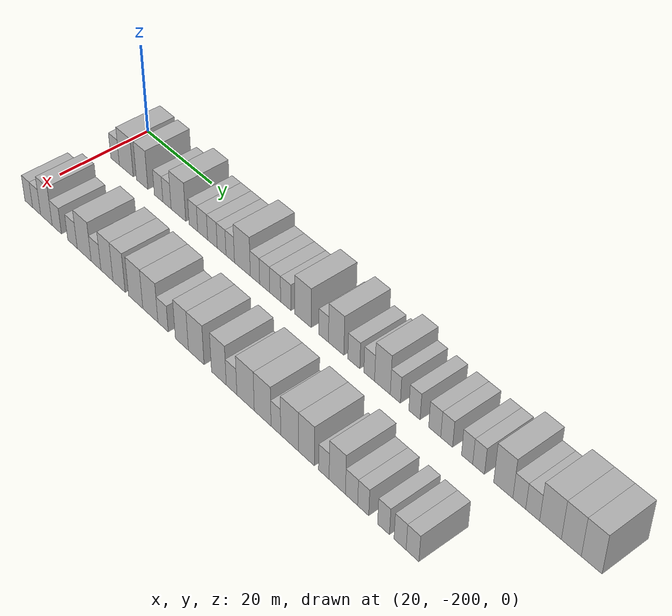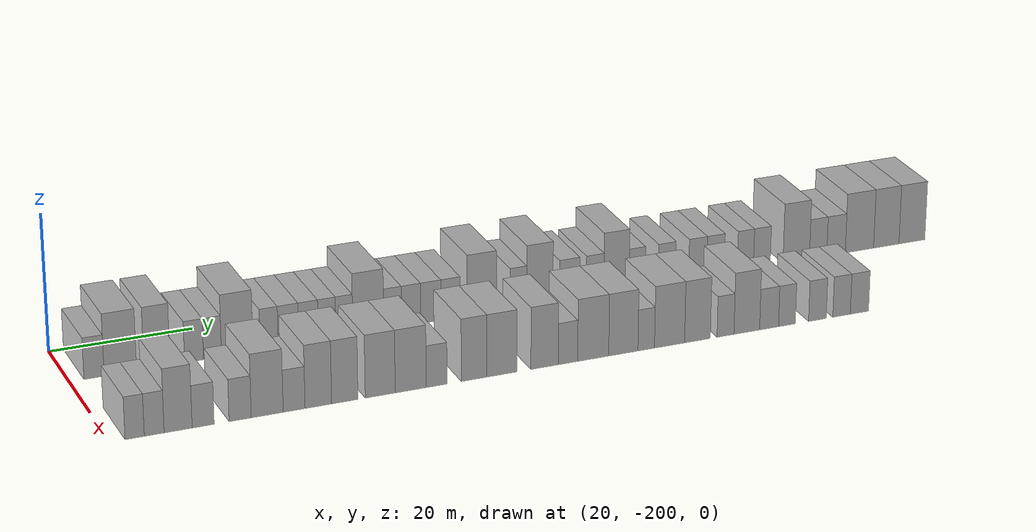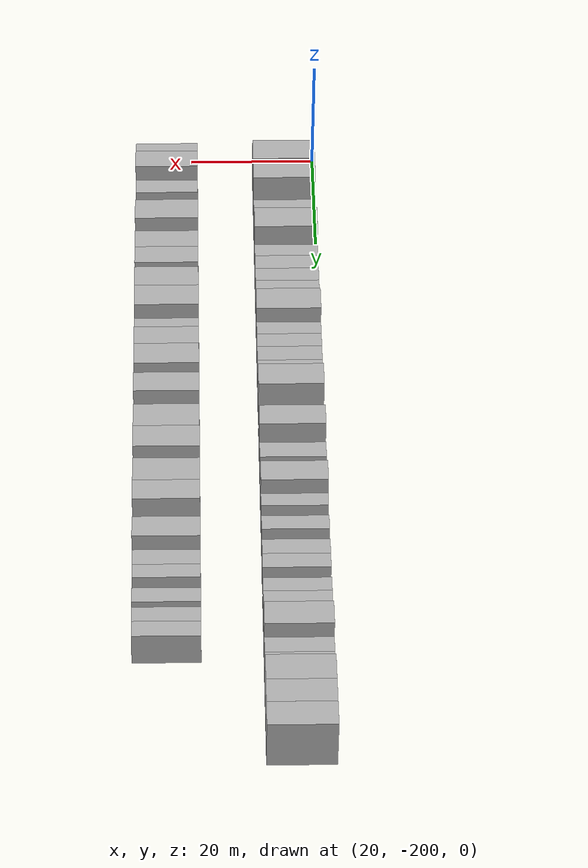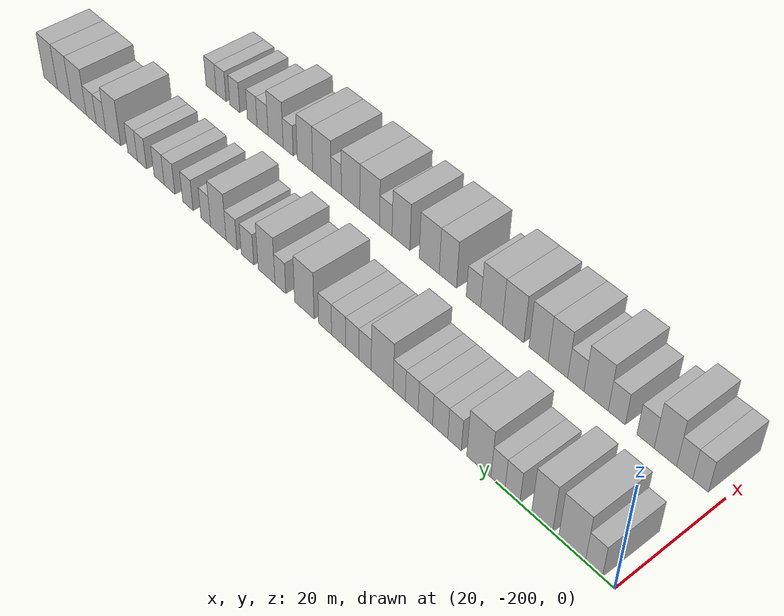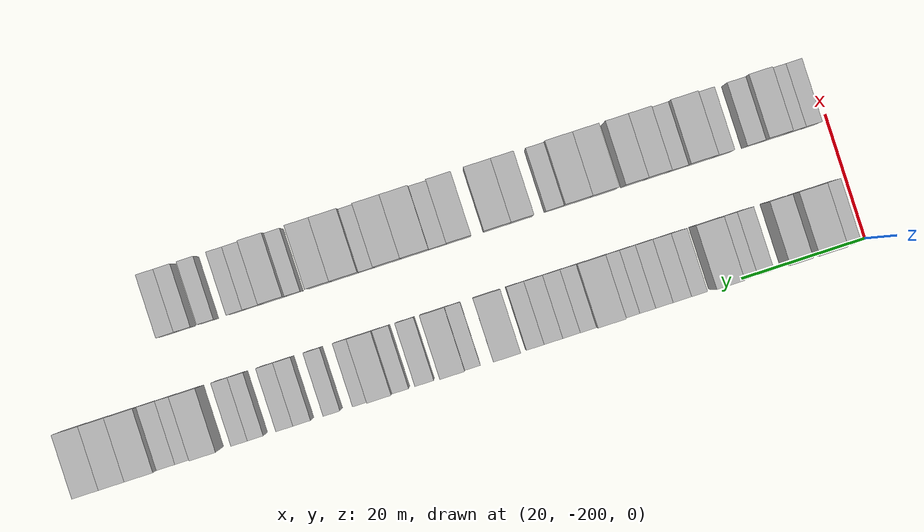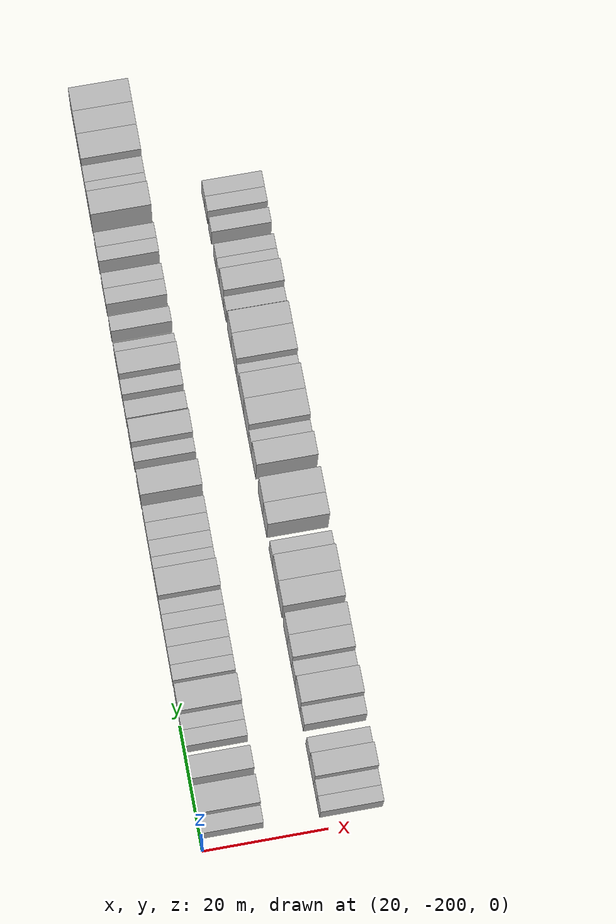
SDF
<sdf version="1.6">
 <world name="default">
  <model name="building_1">
   <static>1</static>
   <pose>25.0000 -196.6240 0 0.000000 0.000000 0.000000</pose>
   <link name="link">
    <pose>0 0 3.00 0 0 0</pose>
    <collision name="collision"><geometry><box><size>10.0000 2.7521 6.0000</size></box></geometry></collision>
    <visual name="visual">
     <cast_shadows>0</cast_shadows>
     <geometry><box><size>10.0000 2.7521 6.0000</size></box></geometry>
     <material>
      <script>
       <uri>model://HANNAS_wall/materials/scripts</uri>
       <uri>model://HANNAS_wall/materials/textures</uri>
       <name>vrc/HANNAS_wall</name>
      </script>
     </material>
    </visual>
   </link>
  </model>
  <model name="building_2">
   <static>1</static>
   <pose>25.0000 -193.0271 0 0.000000 0.000000 0.000000</pose>
   <link name="link">
    <pose>0 0 4.50 0 0 0</pose>
    <collision name="collision"><geometry><box><size>10.0000 4.4416 9.0000</size></box></geometry></collision>
    <visual name="visual">
     <cast_shadows>0</cast_shadows>
     <geometry><box><size>10.0000 4.4416 9.0000</size></box></geometry>
     <material>
      <script>
       <uri>model://HANNAS_wall/materials/scripts</uri>
       <uri>model://HANNAS_wall/materials/textures</uri>
       <name>vrc/HANNAS_wall</name>
      </script>
     </material>
    </visual>
   </link>
  </model>
  <model name="building_3">
   <static>1</static>
   <pose>25.0000 -188.0052 0 0.000000 0.000000 0.000000</pose>
   <link name="link">
    <pose>0 0 4.50 0 0 0</pose>
    <collision name="collision"><geometry><box><size>10.0000 3.6023 9.0000</size></box></geometry></collision>
    <visual name="visual">
     <cast_shadows>0</cast_shadows>
     <geometry><box><size>10.0000 3.6023 9.0000</size></box></geometry>
     <material>
      <script>
       <uri>model://HANNAS_wall/materials/scripts</uri>
       <uri>model://HANNAS_wall/materials/textures</uri>
       <name>vrc/HANNAS_wall</name>
      </script>
     </material>
    </visual>
   </link>
  </model>
  <model name="building_4">
   <static>1</static>
   <pose>25.0000 -182.8903 0 0.000000 0.000000 0.000000</pose>
   <link name="link">
    <pose>0 0 3.00 0 0 0</pose>
    <collision name="collision"><geometry><box><size>10.0000 2.6275 6.0000</size></box></geometry></collision>
    <visual name="visual">
     <cast_shadows>0</cast_shadows>
     <geometry><box><size>10.0000 2.6275 6.0000</size></box></geometry>
     <material>
      <script>
       <uri>model://HANNAS_wall/materials/scripts</uri>
       <uri>model://HANNAS_wall/materials/textures</uri>
       <name>vrc/HANNAS_wall</name>
      </script>
     </material>
    </visual>
   </link>
  </model>
  <model name="building_5">
   <static>1</static>
   <pose>25.0000 -180.3268 0 0.000000 0.000000 0.000000</pose>
   <link name="link">
    <pose>0 0 3.00 0 0 0</pose>
    <collision name="collision"><geometry><box><size>10.0000 2.4995 6.0000</size></box></geometry></collision>
    <visual name="visual">
     <cast_shadows>0</cast_shadows>
     <geometry><box><size>10.0000 2.4995 6.0000</size></box></geometry>
     <material>
      <script>
       <uri>model://HANNAS_wall/materials/scripts</uri>
       <uri>model://HANNAS_wall/materials/textures</uri>
       <name>vrc/HANNAS_wall</name>
      </script>
     </material>
    </visual>
   </link>
  </model>
  <model name="building_6">
   <static>1</static>
   <pose>25.0000 -176.8723 0 0.000000 0.000000 0.000000</pose>
   <link name="link">
    <pose>0 0 4.50 0 0 0</pose>
    <collision name="collision"><geometry><box><size>10.0000 4.4094 9.0000</size></box></geometry></collision>
    <visual name="visual">
     <cast_shadows>0</cast_shadows>
     <geometry><box><size>10.0000 4.4094 9.0000</size></box></geometry>
     <material>
      <script>
       <uri>model://HANNAS_wall/materials/scripts</uri>
       <uri>model://HANNAS_wall/materials/textures</uri>
       <name>vrc/HANNAS_wall</name>
      </script>
     </material>
    </visual>
   </link>
  </model>
  <model name="building_7">
   <static>1</static>
   <pose>25.0000 -172.3986 0 0.000000 0.000000 0.000000</pose>
   <link name="link">
    <pose>0 0 3.00 0 0 0</pose>
    <collision name="collision"><geometry><box><size>10.0000 2.5380 6.0000</size></box></geometry></collision>
    <visual name="visual">
     <cast_shadows>0</cast_shadows>
     <geometry><box><size>10.0000 2.5380 6.0000</size></box></geometry>
     <material>
      <script>
       <uri>model://HANNAS_wall/materials/scripts</uri>
       <uri>model://HANNAS_wall/materials/textures</uri>
       <name>vrc/HANNAS_wall</name>
      </script>
     </material>
    </visual>
   </link>
  </model>
  <model name="building_8">
   <static>1</static>
   <pose>25.0000 -169.6750 0 0.000000 0.000000 0.000000</pose>
   <link name="link">
    <pose>0 0 3.00 0 0 0</pose>
    <collision name="collision"><geometry><box><size>10.0000 2.9092 6.0000</size></box></geometry></collision>
    <visual name="visual">
     <cast_shadows>0</cast_shadows>
     <geometry><box><size>10.0000 2.9092 6.0000</size></box></geometry>
     <material>
      <script>
       <uri>model://HANNAS_wall/materials/scripts</uri>
       <uri>model://HANNAS_wall/materials/textures</uri>
       <name>vrc/HANNAS_wall</name>
      </script>
     </material>
    </visual>
   </link>
  </model>
  <model name="building_9">
   <static>1</static>
   <pose>25.0000 -166.8359 0 0.000000 0.000000 0.000000</pose>
   <link name="link">
    <pose>0 0 3.00 0 0 0</pose>
    <collision name="collision"><geometry><box><size>10.0000 2.7690 6.0000</size></box></geometry></collision>
    <visual name="visual">
     <cast_shadows>0</cast_shadows>
     <geometry><box><size>10.0000 2.7690 6.0000</size></box></geometry>
     <material>
      <script>
       <uri>model://HANNAS_wall/materials/scripts</uri>
       <uri>model://HANNAS_wall/materials/textures</uri>
       <name>vrc/HANNAS_wall</name>
      </script>
     </material>
    </visual>
   </link>
  </model>
  <model name="building_10">
   <static>1</static>
   <pose>25.0000 -164.1963 0 0.000000 0.000000 0.000000</pose>
   <link name="link">
    <pose>0 0 3.00 0 0 0</pose>
    <collision name="collision"><geometry><box><size>10.0000 2.5103 6.0000</size></box></geometry></collision>
    <visual name="visual">
     <cast_shadows>0</cast_shadows>
     <geometry><box><size>10.0000 2.5103 6.0000</size></box></geometry>
     <material>
      <script>
       <uri>model://HANNAS_wall/materials/scripts</uri>
       <uri>model://HANNAS_wall/materials/textures</uri>
       <name>vrc/HANNAS_wall</name>
      </script>
     </material>
    </visual>
   </link>
  </model>
  <model name="building_11">
   <static>1</static>
   <pose>25.0000 -161.7370 0 0.000000 0.000000 0.000000</pose>
   <link name="link">
    <pose>0 0 3.00 0 0 0</pose>
    <collision name="collision"><geometry><box><size>10.0000 2.4083 6.0000</size></box></geometry></collision>
    <visual name="visual">
     <cast_shadows>0</cast_shadows>
     <geometry><box><size>10.0000 2.4083 6.0000</size></box></geometry>
     <material>
      <script>
       <uri>model://HANNAS_wall/materials/scripts</uri>
       <uri>model://HANNAS_wall/materials/textures</uri>
       <name>vrc/HANNAS_wall</name>
      </script>
     </material>
    </visual>
   </link>
  </model>
  <model name="building_12">
   <static>1</static>
   <pose>25.0000 -158.3071 0 0.000000 0.000000 0.000000</pose>
   <link name="link">
    <pose>0 0 4.50 0 0 0</pose>
    <collision name="collision"><geometry><box><size>10.0000 4.4516 9.0000</size></box></geometry></collision>
    <visual name="visual">
     <cast_shadows>0</cast_shadows>
     <geometry><box><size>10.0000 4.4516 9.0000</size></box></geometry>
     <material>
      <script>
       <uri>model://HANNAS_wall/materials/scripts</uri>
       <uri>model://HANNAS_wall/materials/textures</uri>
       <name>vrc/HANNAS_wall</name>
      </script>
     </material>
    </visual>
   </link>
  </model>
  <model name="building_13">
   <static>1</static>
   <pose>25.0000 -154.7965 0 0.000000 0.000000 0.000000</pose>
   <link name="link">
    <pose>0 0 3.00 0 0 0</pose>
    <collision name="collision"><geometry><box><size>10.0000 2.5695 6.0000</size></box></geometry></collision>
    <visual name="visual">
     <cast_shadows>0</cast_shadows>
     <geometry><box><size>10.0000 2.5695 6.0000</size></box></geometry>
     <material>
      <script>
       <uri>model://HANNAS_wall/materials/scripts</uri>
       <uri>model://HANNAS_wall/materials/textures</uri>
       <name>vrc/HANNAS_wall</name>
      </script>
     </material>
    </visual>
   </link>
  </model>
  <model name="building_14">
   <static>1</static>
   <pose>25.0000 -152.1294 0 0.000000 0.000000 0.000000</pose>
   <link name="link">
    <pose>0 0 3.00 0 0 0</pose>
    <collision name="collision"><geometry><box><size>10.0000 2.7647 6.0000</size></box></geometry></collision>
    <visual name="visual">
     <cast_shadows>0</cast_shadows>
     <geometry><box><size>10.0000 2.7647 6.0000</size></box></geometry>
     <material>
      <script>
       <uri>model://HANNAS_wall/materials/scripts</uri>
       <uri>model://HANNAS_wall/materials/textures</uri>
       <name>vrc/HANNAS_wall</name>
      </script>
     </material>
    </visual>
   </link>
  </model>
  <model name="building_15">
   <static>1</static>
   <pose>25.0000 -149.2659 0 0.000000 0.000000 0.000000</pose>
   <link name="link">
    <pose>0 0 3.00 0 0 0</pose>
    <collision name="collision"><geometry><box><size>10.0000 2.9622 6.0000</size></box></geometry></collision>
    <visual name="visual">
     <cast_shadows>0</cast_shadows>
     <geometry><box><size>10.0000 2.9622 6.0000</size></box></geometry>
     <material>
      <script>
       <uri>model://HANNAS_wall/materials/scripts</uri>
       <uri>model://HANNAS_wall/materials/textures</uri>
       <name>vrc/HANNAS_wall</name>
      </script>
     </material>
    </visual>
   </link>
  </model>
  <model name="building_16">
   <static>1</static>
   <pose>25.0000 -146.3856 0 0.000000 0.000000 0.000000</pose>
   <link name="link">
    <pose>0 0 3.00 0 0 0</pose>
    <collision name="collision"><geometry><box><size>10.0000 2.7983 6.0000</size></box></geometry></collision>
    <visual name="visual">
     <cast_shadows>0</cast_shadows>
     <geometry><box><size>10.0000 2.7983 6.0000</size></box></geometry>
     <material>
      <script>
       <uri>model://HANNAS_wall/materials/scripts</uri>
       <uri>model://HANNAS_wall/materials/textures</uri>
       <name>vrc/HANNAS_wall</name>
      </script>
     </material>
    </visual>
   </link>
  </model>
  <model name="building_17">
   <static>1</static>
   <pose>25.0000 -141.8396 0 0.000000 0.000000 0.000000</pose>
   <link name="link">
    <pose>0 0 4.50 0 0 0</pose>
    <collision name="collision"><geometry><box><size>10.0000 4.2937 9.0000</size></box></geometry></collision>
    <visual name="visual">
     <cast_shadows>0</cast_shadows>
     <geometry><box><size>10.0000 4.2937 9.0000</size></box></geometry>
     <material>
      <script>
       <uri>model://HANNAS_wall/materials/scripts</uri>
       <uri>model://HANNAS_wall/materials/textures</uri>
       <name>vrc/HANNAS_wall</name>
      </script>
     </material>
    </visual>
   </link>
  </model>
  <model name="building_18">
   <static>1</static>
   <pose>25.0000 -136.4568 0 0.000000 0.000000 0.000000</pose>
   <link name="link">
    <pose>0 0 3.00 0 0 0</pose>
    <collision name="collision"><geometry><box><size>10.0000 2.4720 6.0000</size></box></geometry></collision>
    <visual name="visual">
     <cast_shadows>0</cast_shadows>
     <geometry><box><size>10.0000 2.4720 6.0000</size></box></geometry>
     <material>
      <script>
       <uri>model://HANNAS_wall/materials/scripts</uri>
       <uri>model://HANNAS_wall/materials/textures</uri>
       <name>vrc/HANNAS_wall</name>
      </script>
     </material>
    </visual>
   </link>
  </model>
  <model name="building_19">
   <static>1</static>
   <pose>25.0000 -133.2652 0 0.000000 0.000000 0.000000</pose>
   <link name="link">
    <pose>0 0 4.50 0 0 0</pose>
    <collision name="collision"><geometry><box><size>10.0000 3.9112 9.0000</size></box></geometry></collision>
    <visual name="visual">
     <cast_shadows>0</cast_shadows>
     <geometry><box><size>10.0000 3.9112 9.0000</size></box></geometry>
     <material>
      <script>
       <uri>model://HANNAS_wall/materials/scripts</uri>
       <uri>model://HANNAS_wall/materials/textures</uri>
       <name>vrc/HANNAS_wall</name>
      </script>
     </material>
    </visual>
   </link>
  </model>
  <model name="building_20">
   <static>1</static>
   <pose>25.0000 -128.8170 0 0.000000 0.000000 0.000000</pose>
   <link name="link">
    <pose>0 0 3.00 0 0 0</pose>
    <collision name="collision"><geometry><box><size>10.0000 2.9850 6.0000</size></box></geometry></collision>
    <visual name="visual">
     <cast_shadows>0</cast_shadows>
     <geometry><box><size>10.0000 2.9850 6.0000</size></box></geometry>
     <material>
      <script>
       <uri>model://HANNAS_wall/materials/scripts</uri>
       <uri>model://HANNAS_wall/materials/textures</uri>
       <name>vrc/HANNAS_wall</name>
      </script>
     </material>
    </visual>
   </link>
  </model>
  <model name="building_21">
   <static>1</static>
   <pose>25.0000 -125.0087 0 0.000000 0.000000 0.000000</pose>
   <link name="link">
    <pose>0 0 3.00 0 0 0</pose>
    <collision name="collision"><geometry><box><size>10.0000 2.6317 6.0000</size></box></geometry></collision>
    <visual name="visual">
     <cast_shadows>0</cast_shadows>
     <geometry><box><size>10.0000 2.6317 6.0000</size></box></geometry>
     <material>
      <script>
       <uri>model://HANNAS_wall/materials/scripts</uri>
       <uri>model://HANNAS_wall/materials/textures</uri>
       <name>vrc/HANNAS_wall</name>
      </script>
     </material>
    </visual>
   </link>
  </model>
  <model name="building_22">
   <static>1</static>
   <pose>25.0000 -121.7836 0 0.000000 0.000000 0.000000</pose>
   <link name="link">
    <pose>0 0 4.50 0 0 0</pose>
    <collision name="collision"><geometry><box><size>10.0000 3.8185 9.0000</size></box></geometry></collision>
    <visual name="visual">
     <cast_shadows>0</cast_shadows>
     <geometry><box><size>10.0000 3.8185 9.0000</size></box></geometry>
     <material>
      <script>
       <uri>model://HANNAS_wall/materials/scripts</uri>
       <uri>model://HANNAS_wall/materials/textures</uri>
       <name>vrc/HANNAS_wall</name>
      </script>
     </material>
    </visual>
   </link>
  </model>
  <model name="building_23">
   <static>1</static>
   <pose>25.0000 -118.6639 0 0.000000 0.000000 0.000000</pose>
   <link name="link">
    <pose>0 0 3.00 0 0 0</pose>
    <collision name="collision"><geometry><box><size>10.0000 2.4210 6.0000</size></box></geometry></collision>
    <visual name="visual">
     <cast_shadows>0</cast_shadows>
     <geometry><box><size>10.0000 2.4210 6.0000</size></box></geometry>
     <material>
      <script>
       <uri>model://HANNAS_wall/materials/scripts</uri>
       <uri>model://HANNAS_wall/materials/textures</uri>
       <name>vrc/HANNAS_wall</name>
      </script>
     </material>
    </visual>
   </link>
  </model>
  <model name="building_24">
   <static>1</static>
   <pose>25.0000 -114.1288 0 0.000000 0.000000 0.000000</pose>
   <link name="link">
    <pose>0 0 3.00 0 0 0</pose>
    <collision name="collision"><geometry><box><size>10.0000 2.6491 6.0000</size></box></geometry></collision>
    <visual name="visual">
     <cast_shadows>0</cast_shadows>
     <geometry><box><size>10.0000 2.6491 6.0000</size></box></geometry>
     <material>
      <script>
       <uri>model://HANNAS_wall/materials/scripts</uri>
       <uri>model://HANNAS_wall/materials/textures</uri>
       <name>vrc/HANNAS_wall</name>
      </script>
     </material>
    </visual>
   </link>
  </model>
  <model name="building_25">
   <static>1</static>
   <pose>25.0000 -109.4126 0 0.000000 0.000000 0.000000</pose>
   <link name="link">
    <pose>0 0 3.00 0 0 0</pose>
    <collision name="collision"><geometry><box><size>10.0000 2.7834 6.0000</size></box></geometry></collision>
    <visual name="visual">
     <cast_shadows>0</cast_shadows>
     <geometry><box><size>10.0000 2.7834 6.0000</size></box></geometry>
     <material>
      <script>
       <uri>model://HANNAS_wall/materials/scripts</uri>
       <uri>model://HANNAS_wall/materials/textures</uri>
       <name>vrc/HANNAS_wall</name>
      </script>
     </material>
    </visual>
   </link>
  </model>
  <model name="building_26">
   <static>1</static>
   <pose>25.0000 -106.6699 0 0.000000 0.000000 0.000000</pose>
   <link name="link">
    <pose>0 0 3.00 0 0 0</pose>
    <collision name="collision"><geometry><box><size>10.0000 2.7020 6.0000</size></box></geometry></collision>
    <visual name="visual">
     <cast_shadows>0</cast_shadows>
     <geometry><box><size>10.0000 2.7020 6.0000</size></box></geometry>
     <material>
      <script>
       <uri>model://HANNAS_wall/materials/scripts</uri>
       <uri>model://HANNAS_wall/materials/textures</uri>
       <name>vrc/HANNAS_wall</name>
      </script>
     </material>
    </visual>
   </link>
  </model>
  <model name="building_27">
   <static>1</static>
   <pose>25.0000 -102.0671 0 0.000000 0.000000 0.000000</pose>
   <link name="link">
    <pose>0 0 3.00 0 0 0</pose>
    <collision name="collision"><geometry><box><size>10.0000 2.5036 6.0000</size></box></geometry></collision>
    <visual name="visual">
     <cast_shadows>0</cast_shadows>
     <geometry><box><size>10.0000 2.5036 6.0000</size></box></geometry>
     <material>
      <script>
       <uri>model://HANNAS_wall/materials/scripts</uri>
       <uri>model://HANNAS_wall/materials/textures</uri>
       <name>vrc/HANNAS_wall</name>
      </script>
     </material>
    </visual>
   </link>
  </model>
  <model name="building_28">
   <static>1</static>
   <pose>25.0000 -99.5092 0 0.000000 0.000000 0.000000</pose>
   <link name="link">
    <pose>0 0 3.00 0 0 0</pose>
    <collision name="collision"><geometry><box><size>10.0000 2.6123 6.0000</size></box></geometry></collision>
    <visual name="visual">
     <cast_shadows>0</cast_shadows>
     <geometry><box><size>10.0000 2.6123 6.0000</size></box></geometry>
     <material>
      <script>
       <uri>model://HANNAS_wall/materials/scripts</uri>
       <uri>model://HANNAS_wall/materials/textures</uri>
       <name>vrc/HANNAS_wall</name>
      </script>
     </material>
    </visual>
   </link>
  </model>
  <model name="building_29">
   <static>1</static>
   <pose>25.0000 -94.1316 0 0.000000 0.000000 0.000000</pose>
   <link name="link">
    <pose>0 0 4.50 0 0 0</pose>
    <collision name="collision"><geometry><box><size>10.0000 4.1430 9.0000</size></box></geometry></collision>
    <visual name="visual">
     <cast_shadows>0</cast_shadows>
     <geometry><box><size>10.0000 4.1430 9.0000</size></box></geometry>
     <material>
      <script>
       <uri>model://HANNAS_wall/materials/scripts</uri>
       <uri>model://HANNAS_wall/materials/textures</uri>
       <name>vrc/HANNAS_wall</name>
      </script>
     </material>
    </visual>
   </link>
  </model>
  <model name="building_30">
   <static>1</static>
   <pose>25.0000 -90.6957 0 0.000000 0.000000 0.000000</pose>
   <link name="link">
    <pose>0 0 3.00 0 0 0</pose>
    <collision name="collision"><geometry><box><size>10.0000 2.7287 6.0000</size></box></geometry></collision>
    <visual name="visual">
     <cast_shadows>0</cast_shadows>
     <geometry><box><size>10.0000 2.7287 6.0000</size></box></geometry>
     <material>
      <script>
       <uri>model://HANNAS_wall/materials/scripts</uri>
       <uri>model://HANNAS_wall/materials/textures</uri>
       <name>vrc/HANNAS_wall</name>
      </script>
     </material>
    </visual>
   </link>
  </model>
  <model name="building_31">
   <static>1</static>
   <pose>25.0000 -87.8668 0 0.000000 0.000000 0.000000</pose>
   <link name="link">
    <pose>0 0 3.00 0 0 0</pose>
    <collision name="collision"><geometry><box><size>10.0000 2.9290 6.0000</size></box></geometry></collision>
    <visual name="visual">
     <cast_shadows>0</cast_shadows>
     <geometry><box><size>10.0000 2.9290 6.0000</size></box></geometry>
     <material>
      <script>
       <uri>model://HANNAS_wall/materials/scripts</uri>
       <uri>model://HANNAS_wall/materials/textures</uri>
       <name>vrc/HANNAS_wall</name>
      </script>
     </material>
    </visual>
   </link>
  </model>
  <model name="building_32">
   <static>1</static>
   <pose>25.0000 -84.1582 0 0.000000 0.000000 0.000000</pose>
   <link name="link">
    <pose>0 0 4.50 0 0 0</pose>
    <collision name="collision"><geometry><box><size>10.0000 4.4882 9.0000</size></box></geometry></collision>
    <visual name="visual">
     <cast_shadows>0</cast_shadows>
     <geometry><box><size>10.0000 4.4882 9.0000</size></box></geometry>
     <material>
      <script>
       <uri>model://HANNAS_wall/materials/scripts</uri>
       <uri>model://HANNAS_wall/materials/textures</uri>
       <name>vrc/HANNAS_wall</name>
      </script>
     </material>
    </visual>
   </link>
  </model>
  <model name="building_33">
   <static>1</static>
   <pose>25.0000 -79.8913 0 0.000000 0.000000 0.000000</pose>
   <link name="link">
    <pose>0 0 4.50 0 0 0</pose>
    <collision name="collision"><geometry><box><size>10.0000 4.0456 9.0000</size></box></geometry></collision>
    <visual name="visual">
     <cast_shadows>0</cast_shadows>
     <geometry><box><size>10.0000 4.0456 9.0000</size></box></geometry>
     <material>
      <script>
       <uri>model://HANNAS_wall/materials/scripts</uri>
       <uri>model://HANNAS_wall/materials/textures</uri>
       <name>vrc/HANNAS_wall</name>
      </script>
     </material>
    </visual>
   </link>
  </model>
  <model name="building_34">
   <static>1</static>
   <pose>25.0000 -75.7905 0 0.000000 0.000000 0.000000</pose>
   <link name="link">
    <pose>0 0 4.50 0 0 0</pose>
    <collision name="collision"><geometry><box><size>10.0000 4.1559 9.0000</size></box></geometry></collision>
    <visual name="visual">
     <cast_shadows>0</cast_shadows>
     <geometry><box><size>10.0000 4.1559 9.0000</size></box></geometry>
     <material>
      <script>
       <uri>model://HANNAS_wall/materials/scripts</uri>
       <uri>model://HANNAS_wall/materials/textures</uri>
       <name>vrc/HANNAS_wall</name>
      </script>
     </material>
    </visual>
   </link>
  </model>
  <model name="building_100">
   <static>1</static>
   <pose>44.0000 -196.7285 0 0.000000 0.000000 0.000000</pose>
   <link name="link">
    <pose>0 0 3.00 0 0 0</pose>
    <collision name="collision"><geometry><box><size>10.0000 2.5431 6.0000</size></box></geometry></collision>
    <visual name="visual">
     <cast_shadows>0</cast_shadows>
     <geometry><box><size>10.0000 2.5431 6.0000</size></box></geometry>
     <material>
      <script>
       <uri>model://HANNAS_wall/materials/scripts</uri>
       <uri>model://HANNAS_wall/materials/textures</uri>
       <name>vrc/HANNAS_wall</name>
      </script>
     </material>
    </visual>
   </link>
  </model>
  <model name="building_101">
   <static>1</static>
   <pose>44.0000 -194.1441 0 0.000000 0.000000 0.000000</pose>
   <link name="link">
    <pose>0 0 3.00 0 0 0</pose>
    <collision name="collision"><geometry><box><size>10.0000 2.6255 6.0000</size></box></geometry></collision>
    <visual name="visual">
     <cast_shadows>0</cast_shadows>
     <geometry><box><size>10.0000 2.6255 6.0000</size></box></geometry>
     <material>
      <script>
       <uri>model://HANNAS_wall/materials/scripts</uri>
       <uri>model://HANNAS_wall/materials/textures</uri>
       <name>vrc/HANNAS_wall</name>
      </script>
     </material>
    </visual>
   </link>
  </model>
  <model name="building_102">
   <static>1</static>
   <pose>44.0000 -190.9655 0 0.000000 0.000000 0.000000</pose>
   <link name="link">
    <pose>0 0 4.50 0 0 0</pose>
    <collision name="collision"><geometry><box><size>10.0000 3.7317 9.0000</size></box></geometry></collision>
    <visual name="visual">
     <cast_shadows>0</cast_shadows>
     <geometry><box><size>10.0000 3.7317 9.0000</size></box></geometry>
     <material>
      <script>
       <uri>model://HANNAS_wall/materials/scripts</uri>
       <uri>model://HANNAS_wall/materials/textures</uri>
       <name>vrc/HANNAS_wall</name>
      </script>
     </material>
    </visual>
   </link>
  </model>
  <model name="building_103">
   <static>1</static>
   <pose>44.0000 -187.6283 0 0.000000 0.000000 0.000000</pose>
   <link name="link">
    <pose>0 0 3.00 0 0 0</pose>
    <collision name="collision"><geometry><box><size>10.0000 2.9427 6.0000</size></box></geometry></collision>
    <visual name="visual">
     <cast_shadows>0</cast_shadows>
     <geometry><box><size>10.0000 2.9427 6.0000</size></box></geometry>
     <material>
      <script>
       <uri>model://HANNAS_wall/materials/scripts</uri>
       <uri>model://HANNAS_wall/materials/textures</uri>
       <name>vrc/HANNAS_wall</name>
      </script>
     </material>
    </visual>
   </link>
  </model>
  <model name="building_104">
   <static>1</static>
   <pose>44.0000 -182.6684 0 0.000000 0.000000 0.000000</pose>
   <link name="link">
    <pose>0 0 3.00 0 0 0</pose>
    <collision name="collision"><geometry><box><size>10.0000 2.9771 6.0000</size></box></geometry></collision>
    <visual name="visual">
     <cast_shadows>0</cast_shadows>
     <geometry><box><size>10.0000 2.9771 6.0000</size></box></geometry>
     <material>
      <script>
       <uri>model://HANNAS_wall/materials/scripts</uri>
       <uri>model://HANNAS_wall/materials/textures</uri>
       <name>vrc/HANNAS_wall</name>
      </script>
     </material>
    </visual>
   </link>
  </model>
  <model name="building_105">
   <static>1</static>
   <pose>44.0000 -179.0158 0 0.000000 0.000000 0.000000</pose>
   <link name="link">
    <pose>0 0 4.50 0 0 0</pose>
    <collision name="collision"><geometry><box><size>10.0000 4.3281 9.0000</size></box></geometry></collision>
    <visual name="visual">
     <cast_shadows>0</cast_shadows>
     <geometry><box><size>10.0000 4.3281 9.0000</size></box></geometry>
     <material>
      <script>
       <uri>model://HANNAS_wall/materials/scripts</uri>
       <uri>model://HANNAS_wall/materials/textures</uri>
       <name>vrc/HANNAS_wall</name>
      </script>
     </material>
    </visual>
   </link>
  </model>
  <model name="building_106">
   <static>1</static>
   <pose>44.0000 -175.3624 0 0.000000 0.000000 0.000000</pose>
   <link name="link">
    <pose>0 0 3.00 0 0 0</pose>
    <collision name="collision"><geometry><box><size>10.0000 2.9787 6.0000</size></box></geometry></collision>
    <visual name="visual">
     <cast_shadows>0</cast_shadows>
     <geometry><box><size>10.0000 2.9787 6.0000</size></box></geometry>
     <material>
      <script>
       <uri>model://HANNAS_wall/materials/scripts</uri>
       <uri>model://HANNAS_wall/materials/textures</uri>
       <name>vrc/HANNAS_wall</name>
      </script>
     </material>
    </visual>
   </link>
  </model>
  <model name="building_107">
   <static>1</static>
   <pose>44.0000 -172.0548 0 0.000000 0.000000 0.000000</pose>
   <link name="link">
    <pose>0 0 4.50 0 0 0</pose>
    <collision name="collision"><geometry><box><size>10.0000 3.6367 9.0000</size></box></geometry></collision>
    <visual name="visual">
     <cast_shadows>0</cast_shadows>
     <geometry><box><size>10.0000 3.6367 9.0000</size></box></geometry>
     <material>
      <script>
       <uri>model://HANNAS_wall/materials/scripts</uri>
       <uri>model://HANNAS_wall/materials/textures</uri>
       <name>vrc/HANNAS_wall</name>
      </script>
     </material>
    </visual>
   </link>
  </model>
  <model name="building_108">
   <static>1</static>
   <pose>44.0000 -168.4299 0 0.000000 0.000000 0.000000</pose>
   <link name="link">
    <pose>0 0 4.50 0 0 0</pose>
    <collision name="collision"><geometry><box><size>10.0000 3.6131 9.0000</size></box></geometry></collision>
    <visual name="visual">
     <cast_shadows>0</cast_shadows>
     <geometry><box><size>10.0000 3.6131 9.0000</size></box></geometry>
     <material>
      <script>
       <uri>model://HANNAS_wall/materials/scripts</uri>
       <uri>model://HANNAS_wall/materials/textures</uri>
       <name>vrc/HANNAS_wall</name>
      </script>
     </material>
    </visual>
   </link>
  </model>
  <model name="building_109">
   <static>1</static>
   <pose>44.0000 -163.5489 0 0.000000 0.000000 0.000000</pose>
   <link name="link">
    <pose>0 0 4.50 0 0 0</pose>
    <collision name="collision"><geometry><box><size>10.0000 4.1488 9.0000</size></box></geometry></collision>
    <visual name="visual">
     <cast_shadows>0</cast_shadows>
     <geometry><box><size>10.0000 4.1488 9.0000</size></box></geometry>
     <material>
      <script>
       <uri>model://HANNAS_wall/materials/scripts</uri>
       <uri>model://HANNAS_wall/materials/textures</uri>
       <name>vrc/HANNAS_wall</name>
      </script>
     </material>
    </visual>
   </link>
  </model>
  <model name="building_110">
   <static>1</static>
   <pose>44.0000 -159.3108 0 0.000000 0.000000 0.000000</pose>
   <link name="link">
    <pose>0 0 4.50 0 0 0</pose>
    <collision name="collision"><geometry><box><size>10.0000 4.3276 9.0000</size></box></geometry></collision>
    <visual name="visual">
     <cast_shadows>0</cast_shadows>
     <geometry><box><size>10.0000 4.3276 9.0000</size></box></geometry>
     <material>
      <script>
       <uri>model://HANNAS_wall/materials/scripts</uri>
       <uri>model://HANNAS_wall/materials/textures</uri>
       <name>vrc/HANNAS_wall</name>
      </script>
     </material>
    </visual>
   </link>
  </model>
  <model name="building_111">
   <static>1</static>
   <pose>44.0000 -155.6921 0 0.000000 0.000000 0.000000</pose>
   <link name="link">
    <pose>0 0 3.00 0 0 0</pose>
    <collision name="collision"><geometry><box><size>10.0000 2.9097 6.0000</size></box></geometry></collision>
    <visual name="visual">
     <cast_shadows>0</cast_shadows>
     <geometry><box><size>10.0000 2.9097 6.0000</size></box></geometry>
     <material>
      <script>
       <uri>model://HANNAS_wall/materials/scripts</uri>
       <uri>model://HANNAS_wall/materials/textures</uri>
       <name>vrc/HANNAS_wall</name>
      </script>
     </material>
    </visual>
   </link>
  </model>
  <model name="building_112">
   <static>1</static>
   <pose>44.0000 -150.4291 0 0.000000 0.000000 0.000000</pose>
   <link name="link">
    <pose>0 0 4.50 0 0 0</pose>
    <collision name="collision"><geometry><box><size>10.0000 3.6164 9.0000</size></box></geometry></collision>
    <visual name="visual">
     <cast_shadows>0</cast_shadows>
     <geometry><box><size>10.0000 3.6164 9.0000</size></box></geometry>
     <material>
      <script>
       <uri>model://HANNAS_wall/materials/scripts</uri>
       <uri>model://HANNAS_wall/materials/textures</uri>
       <name>vrc/HANNAS_wall</name>
      </script>
     </material>
    </visual>
   </link>
  </model>
  <model name="building_113">
   <static>1</static>
   <pose>44.0000 -146.4962 0 0.000000 0.000000 0.000000</pose>
   <link name="link">
    <pose>0 0 4.50 0 0 0</pose>
    <collision name="collision"><geometry><box><size>10.0000 4.2494 9.0000</size></box></geometry></collision>
    <visual name="visual">
     <cast_shadows>0</cast_shadows>
     <geometry><box><size>10.0000 4.2494 9.0000</size></box></geometry>
     <material>
      <script>
       <uri>model://HANNAS_wall/materials/scripts</uri>
       <uri>model://HANNAS_wall/materials/textures</uri>
       <name>vrc/HANNAS_wall</name>
      </script>
     </material>
    </visual>
   </link>
  </model>
  <model name="building_114">
   <static>1</static>
   <pose>44.0000 -140.4148 0 0.000000 0.000000 0.000000</pose>
   <link name="link">
    <pose>0 0 4.50 0 0 0</pose>
    <collision name="collision"><geometry><box><size>10.0000 3.9133 9.0000</size></box></geometry></collision>
    <visual name="visual">
     <cast_shadows>0</cast_shadows>
     <geometry><box><size>10.0000 3.9133 9.0000</size></box></geometry>
     <material>
      <script>
       <uri>model://HANNAS_wall/materials/scripts</uri>
       <uri>model://HANNAS_wall/materials/textures</uri>
       <name>vrc/HANNAS_wall</name>
      </script>
     </material>
    </visual>
   </link>
  </model>
  <model name="building_115">
   <static>1</static>
   <pose>44.0000 -137.0623 0 0.000000 0.000000 0.000000</pose>
   <link name="link">
    <pose>0 0 3.00 0 0 0</pose>
    <collision name="collision"><geometry><box><size>10.0000 2.7918 6.0000</size></box></geometry></collision>
    <visual name="visual">
     <cast_shadows>0</cast_shadows>
     <geometry><box><size>10.0000 2.7918 6.0000</size></box></geometry>
     <material>
      <script>
       <uri>model://HANNAS_wall/materials/scripts</uri>
       <uri>model://HANNAS_wall/materials/textures</uri>
       <name>vrc/HANNAS_wall</name>
      </script>
     </material>
    </visual>
   </link>
  </model>
  <model name="building_116">
   <static>1</static>
   <pose>44.0000 -133.4216 0 0.000000 0.000000 0.000000</pose>
   <link name="link">
    <pose>0 0 4.50 0 0 0</pose>
    <collision name="collision"><geometry><box><size>10.0000 4.4895 9.0000</size></box></geometry></collision>
    <visual name="visual">
     <cast_shadows>0</cast_shadows>
     <geometry><box><size>10.0000 4.4895 9.0000</size></box></geometry>
     <material>
      <script>
       <uri>model://HANNAS_wall/materials/scripts</uri>
       <uri>model://HANNAS_wall/materials/textures</uri>
       <name>vrc/HANNAS_wall</name>
      </script>
     </material>
    </visual>
   </link>
  </model>
  <model name="building_117">
   <static>1</static>
   <pose>44.0000 -129.0497 0 0.000000 0.000000 0.000000</pose>
   <link name="link">
    <pose>0 0 4.50 0 0 0</pose>
    <collision name="collision"><geometry><box><size>10.0000 4.2543 9.0000</size></box></geometry></collision>
    <visual name="visual">
     <cast_shadows>0</cast_shadows>
     <geometry><box><size>10.0000 4.2543 9.0000</size></box></geometry>
     <material>
      <script>
       <uri>model://HANNAS_wall/materials/scripts</uri>
       <uri>model://HANNAS_wall/materials/textures</uri>
       <name>vrc/HANNAS_wall</name>
      </script>
     </material>
    </visual>
   </link>
  </model>
  <model name="building_118">
   <static>1</static>
   <pose>44.0000 -125.7119 0 0.000000 0.000000 0.000000</pose>
   <link name="link">
    <pose>0 0 3.00 0 0 0</pose>
    <collision name="collision"><geometry><box><size>10.0000 2.4213 6.0000</size></box></geometry></collision>
    <visual name="visual">
     <cast_shadows>0</cast_shadows>
     <geometry><box><size>10.0000 2.4213 6.0000</size></box></geometry>
     <material>
      <script>
       <uri>model://HANNAS_wall/materials/scripts</uri>
       <uri>model://HANNAS_wall/materials/textures</uri>
       <name>vrc/HANNAS_wall</name>
      </script>
     </material>
    </visual>
   </link>
  </model>
  <model name="building_119">
   <static>1</static>
   <pose>44.0000 -122.2919 0 0.000000 0.000000 0.000000</pose>
   <link name="link">
    <pose>0 0 4.50 0 0 0</pose>
    <collision name="collision"><geometry><box><size>10.0000 4.4188 9.0000</size></box></geometry></collision>
    <visual name="visual">
     <cast_shadows>0</cast_shadows>
     <geometry><box><size>10.0000 4.4188 9.0000</size></box></geometry>
     <material>
      <script>
       <uri>model://HANNAS_wall/materials/scripts</uri>
       <uri>model://HANNAS_wall/materials/textures</uri>
       <name>vrc/HANNAS_wall</name>
      </script>
     </material>
    </visual>
   </link>
  </model>
  <model name="building_120">
   <static>1</static>
   <pose>44.0000 -118.1846 0 0.000000 0.000000 0.000000</pose>
   <link name="link">
    <pose>0 0 4.50 0 0 0</pose>
    <collision name="collision"><geometry><box><size>10.0000 3.7957 9.0000</size></box></geometry></collision>
    <visual name="visual">
     <cast_shadows>0</cast_shadows>
     <geometry><box><size>10.0000 3.7957 9.0000</size></box></geometry>
     <material>
      <script>
       <uri>model://HANNAS_wall/materials/scripts</uri>
       <uri>model://HANNAS_wall/materials/textures</uri>
       <name>vrc/HANNAS_wall</name>
      </script>
     </material>
    </visual>
   </link>
  </model>
  <model name="building_121">
   <static>1</static>
   <pose>44.0000 -114.0326 0 0.000000 0.000000 0.000000</pose>
   <link name="link">
    <pose>0 0 3.00 0 0 0</pose>
    <collision name="collision"><geometry><box><size>10.0000 2.5084 6.0000</size></box></geometry></collision>
    <visual name="visual">
     <cast_shadows>0</cast_shadows>
     <geometry><box><size>10.0000 2.5084 6.0000</size></box></geometry>
     <material>
      <script>
       <uri>model://HANNAS_wall/materials/scripts</uri>
       <uri>model://HANNAS_wall/materials/textures</uri>
       <name>vrc/HANNAS_wall</name>
      </script>
     </material>
    </visual>
   </link>
  </model>
  <model name="building_122">
   <static>1</static>
   <pose>44.0000 -110.8612 0 0.000000 0.000000 0.000000</pose>
   <link name="link">
    <pose>0 0 4.50 0 0 0</pose>
    <collision name="collision"><geometry><box><size>10.0000 3.8344 9.0000</size></box></geometry></collision>
    <visual name="visual">
     <cast_shadows>0</cast_shadows>
     <geometry><box><size>10.0000 3.8344 9.0000</size></box></geometry>
     <material>
      <script>
       <uri>model://HANNAS_wall/materials/scripts</uri>
       <uri>model://HANNAS_wall/materials/textures</uri>
       <name>vrc/HANNAS_wall</name>
      </script>
     </material>
    </visual>
   </link>
  </model>
  <model name="building_123">
   <static>1</static>
   <pose>44.0000 -107.5295 0 0.000000 0.000000 0.000000</pose>
   <link name="link">
    <pose>0 0 3.00 0 0 0</pose>
    <collision name="collision"><geometry><box><size>10.0000 2.8291 6.0000</size></box></geometry></collision>
    <visual name="visual">
     <cast_shadows>0</cast_shadows>
     <geometry><box><size>10.0000 2.8291 6.0000</size></box></geometry>
     <material>
      <script>
       <uri>model://HANNAS_wall/materials/scripts</uri>
       <uri>model://HANNAS_wall/materials/textures</uri>
       <name>vrc/HANNAS_wall</name>
      </script>
     </material>
    </visual>
   </link>
  </model>
  <model name="building_124">
   <static>1</static>
   <pose>44.0000 -104.8478 0 0.000000 0.000000 0.000000</pose>
   <link name="link">
    <pose>0 0 3.00 0 0 0</pose>
    <collision name="collision"><geometry><box><size>10.0000 2.5344 6.0000</size></box></geometry></collision>
    <visual name="visual">
     <cast_shadows>0</cast_shadows>
     <geometry><box><size>10.0000 2.5344 6.0000</size></box></geometry>
     <material>
      <script>
       <uri>model://HANNAS_wall/materials/scripts</uri>
       <uri>model://HANNAS_wall/materials/textures</uri>
       <name>vrc/HANNAS_wall</name>
      </script>
     </material>
    </visual>
   </link>
  </model>
  <model name="building_125">
   <static>1</static>
   <pose>44.0000 -100.2501 0 0.000000 0.000000 0.000000</pose>
   <link name="link">
    <pose>0 0 3.00 0 0 0</pose>
    <collision name="collision"><geometry><box><size>10.0000 2.6610 6.0000</size></box></geometry></collision>
    <visual name="visual">
     <cast_shadows>0</cast_shadows>
     <geometry><box><size>10.0000 2.6610 6.0000</size></box></geometry>
     <material>
      <script>
       <uri>model://HANNAS_wall/materials/scripts</uri>
       <uri>model://HANNAS_wall/materials/textures</uri>
       <name>vrc/HANNAS_wall</name>
      </script>
     </material>
    </visual>
   </link>
  </model>
  <model name="building_126">
   <static>1</static>
   <pose>44.0000 -96.5885 0 0.000000 0.000000 0.000000</pose>
   <link name="link">
    <pose>0 0 3.00 0 0 0</pose>
    <collision name="collision"><geometry><box><size>10.0000 2.6623 6.0000</size></box></geometry></collision>
    <visual name="visual">
     <cast_shadows>0</cast_shadows>
     <geometry><box><size>10.0000 2.6623 6.0000</size></box></geometry>
     <material>
      <script>
       <uri>model://HANNAS_wall/materials/scripts</uri>
       <uri>model://HANNAS_wall/materials/textures</uri>
       <name>vrc/HANNAS_wall</name>
      </script>
     </material>
    </visual>
   </link>
  </model>
  <model name="building_127">
   <static>1</static>
   <pose>44.0000 -93.8589 0 0.000000 0.000000 0.000000</pose>
   <link name="link">
    <pose>0 0 3.00 0 0 0</pose>
    <collision name="collision"><geometry><box><size>10.0000 2.7969 6.0000</size></box></geometry></collision>
    <visual name="visual">
     <cast_shadows>0</cast_shadows>
     <geometry><box><size>10.0000 2.7969 6.0000</size></box></geometry>
     <material>
      <script>
       <uri>model://HANNAS_wall/materials/scripts</uri>
       <uri>model://HANNAS_wall/materials/textures</uri>
       <name>vrc/HANNAS_wall</name>
      </script>
     </material>
    </visual>
   </link>
  </model>
 </world>
</sdf>
